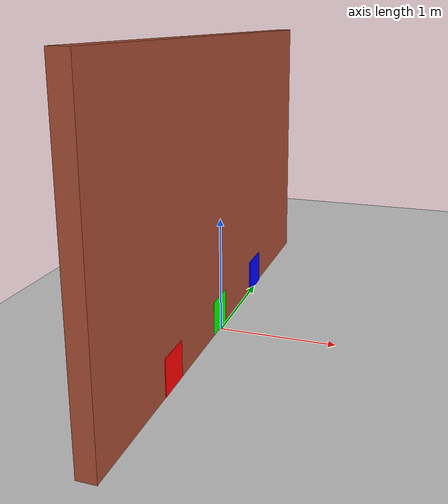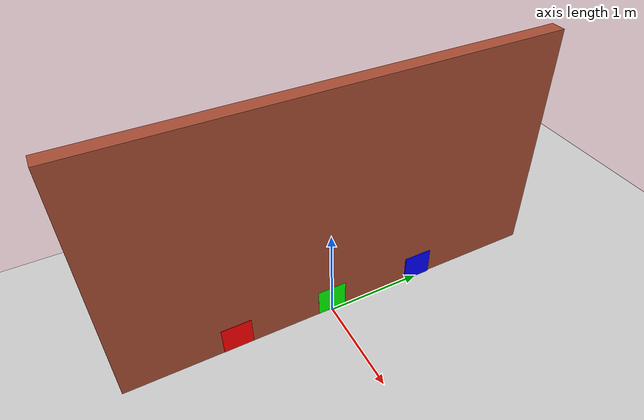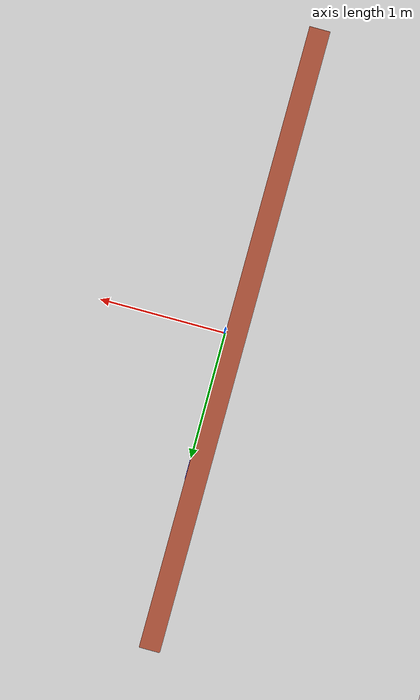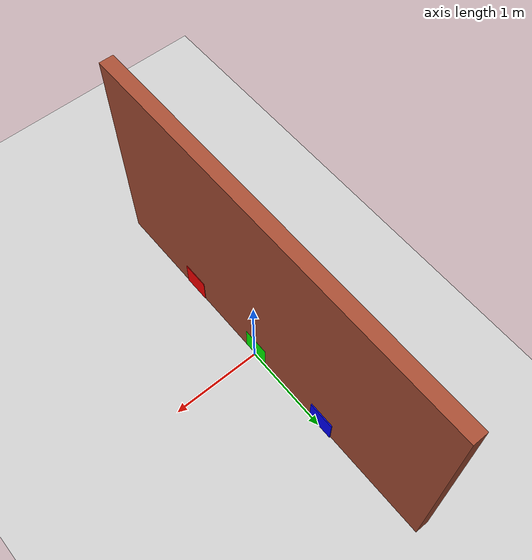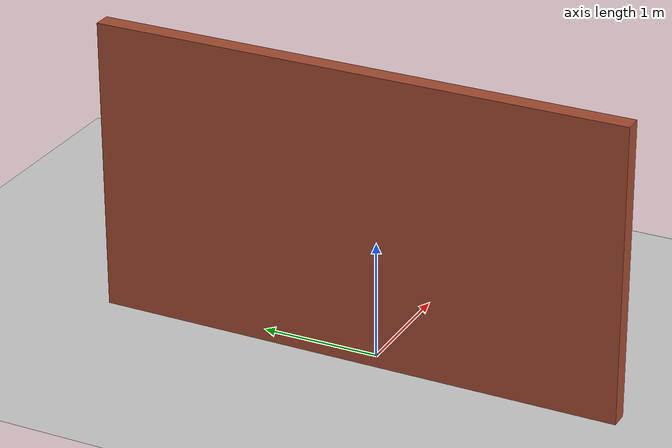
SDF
<sdf version="1.7">
 <world name="default">
  <scene><ambient>0.4 0.4 0.4 1</ambient><background>0.7 0.7 0.7 1</background><shadows>1</shadows></scene>
  <light name="sun" type="directional">
   <pose>0 0 10 0 -0 0</pose>
   <diffuse>0.8 0.8 0.8 1</diffuse>
   <specular>0.2 0.2 0.2 1</specular>
   <attenuation>
    <range>1000</range>
    <constant>0.9</constant>
    <linear>0.01</linear>
    <quadratic>0.001</quadratic>
   </attenuation>
   <direction>-0.5 0.1 -0.9</direction>
   <spot><inner_angle>0</inner_angle><outer_angle>0</outer_angle><falloff>0</falloff></spot>
  </light>
  <model name="ground_plane">
   <static>1</static>
   <link name="link">
    <collision name="collision">
     <geometry><plane><normal>0 0 1</normal><size>100 100</size></plane></geometry>
     <surface>
      <contact><collide_bitmask>65535</collide_bitmask></contact>
      <friction><ode><mu>100</mu><mu2>50</mu2></ode></friction>
     </surface>
    </collision>
    <visual name="visual">
     <cast_shadows>0</cast_shadows>
     <geometry><plane><normal>0 0 1</normal><size>100 100</size></plane></geometry>
     <material>
      <script><uri>file://media/materials/scripts/gazebo.material</uri><name>Gazebo/Grey</name></script>
     </material>
    </visual>
   </link>
  </model>
  <physics type="ode">
   <real_time_update_rate>1000</real_time_update_rate>
   <max_step_size>0.001</max_step_size>
   <real_time_factor>1</real_time_factor>
   <ode>
    <solver>
     <type>quick</type>
     <iters>150</iters>
     <precon_iters>0</precon_iters>
     <sor>1.4</sor>
     <use_dynamic_moi_rescaling>1</use_dynamic_moi_rescaling>
    </solver>
    <constraints>
     <cfm>1e-05</cfm>
     <erp>0.2</erp>
     <contact_max_correcting_vel>2000</contact_max_correcting_vel>
     <contact_surface_layer>0.01</contact_surface_layer>
    </constraints>
   </ode>
  </physics>
  <gravity>0 0 -9.8</gravity>
  <magnetic_field>6e-06 2.3e-05 -4.2e-05</magnetic_field>
  <atmosphere type="adiabatic"/>
  <spherical_coordinates>
   <surface_model>EARTH_WGS84</surface_model>
   <latitude_deg>0</latitude_deg>
   <longitude_deg>0</longitude_deg>
   <elevation>0</elevation>
   <heading_deg>0</heading_deg>
  </spherical_coordinates>
  <model name="brick_wall">
   <link name="Wall_0">
    <pose>0 -1.9925 0 0 -0 0</pose>
    <self_collide>1</self_collide>
    <inertial>
     <mass>1</mass>
     <inertia><ixx>1</ixx><ixy>0</ixy><ixz>0</ixz><iyy>1</iyy><iyz>0</iyz><izz>1</izz></inertia>
    </inertial>
    <visual name="Wall_0_Visual">
     <pose>0 0 1.25 0 -0 0</pose>
     <geometry><box><size>4.5 0.15 2.5</size></box></geometry>
     <material>
      <script><uri>file://media/materials/scripts/gazebo.material</uri><name>Gazebo/Bricks</name></script>
      <ambient>1 1 1 1</ambient>
      <shader type="pixel"><normal_map>__default__</normal_map></shader>
     </material>
     <meta><layer>0</layer></meta>
    </visual>
    <collision name="Wall_0_Collision">
     <pose>0 0 1.25 0 -0 0</pose>
     <geometry><box><size>4.5 0.15 2.5</size></box></geometry>
     <surface>
      <friction>
       <ode><mu>1</mu><mu2>1</mu2><fdir1>0 0 0</fdir1><slip1>0</slip1><slip2>0</slip2></ode>
       <torsional>
        <coefficient>1</coefficient>
        <patch_radius>0</patch_radius>
        <surface_radius>0</surface_radius>
        <use_patch_radius>1</use_patch_radius>
        <ode><slip>0</slip></ode>
       </torsional>
      </friction>
      <bounce><restitution_coefficient>0</restitution_coefficient><threshold>1e+06</threshold></bounce>
      <contact>
       <collide_without_contact>0</collide_without_contact>
       <collide_without_contact_bitmask>1</collide_without_contact_bitmask>
       <collide_bitmask>1</collide_bitmask>
       <ode>
        <soft_cfm>0</soft_cfm>
        <soft_erp>0.2</soft_erp>
        <kp>1e+13</kp>
        <kd>1</kd>
        <max_vel>0.01</max_vel>
        <min_depth>0</min_depth>
       </ode>
       <bullet>
        <split_impulse>1</split_impulse>
        <split_impulse_penetration_threshold>-0.01</split_impulse_penetration_threshold>
        <soft_cfm>0</soft_cfm>
        <soft_erp>0.2</soft_erp>
        <kp>1e+13</kp>
        <kd>1</kd>
       </bullet>
      </contact>
     </surface>
    </collision>
   </link>
   <static>1</static>
   <pose>-2.07967 0.137787 0 0 -0 1.56885</pose>
  </model>
  <model name="green_square">
   <link name="link_1">
    <inertial>
     <mass>1</mass>
     <inertia>
      <ixx>0.166667</ixx>
      <ixy>0</ixy>
      <ixz>0</ixz>
      <iyy>0.166667</iyy>
      <iyz>0</iyz>
      <izz>0.166667</izz>
     </inertia>
    </inertial>
    <self_collide>1</self_collide>
    <visual name="visual">
     <geometry><box><size>0.05 0.3 0.3</size></box></geometry>
     <material>
      <lighting>1</lighting>
      <script><uri>file://media/materials/scripts/gazebo.material</uri><name>Gazebo/Grey</name></script>
      <shader type="pixel"><normal_map>__default__</normal_map></shader>
      <ambient>0.3 1 0 1</ambient>
      <diffuse>0 1 0 1</diffuse>
      <specular>0 1 0 1</specular>
      <emissive>0 1 0 1</emissive>
     </material>
    </visual>
    <collision name="collision">
     <geometry><box><size>1 1 1</size></box></geometry>
     <surface>
      <friction>
       <ode><mu>1</mu><mu2>1</mu2><fdir1>0 0 0</fdir1><slip1>0</slip1><slip2>0</slip2></ode>
       <torsional>
        <coefficient>1</coefficient>
        <patch_radius>0</patch_radius>
        <surface_radius>0</surface_radius>
        <use_patch_radius>1</use_patch_radius>
        <ode><slip>0</slip></ode>
       </torsional>
      </friction>
      <bounce><restitution_coefficient>0</restitution_coefficient><threshold>1e+06</threshold></bounce>
      <contact>
       <collide_without_contact>0</collide_without_contact>
       <collide_without_contact_bitmask>1</collide_without_contact_bitmask>
       <collide_bitmask>1</collide_bitmask>
       <ode>
        <soft_cfm>0</soft_cfm>
        <soft_erp>0.2</soft_erp>
        <kp>1e+13</kp>
        <kd>1</kd>
        <max_vel>0.01</max_vel>
        <min_depth>0</min_depth>
       </ode>
       <bullet>
        <split_impulse>1</split_impulse>
        <split_impulse_penetration_threshold>-0.01</split_impulse_penetration_threshold>
        <soft_cfm>0</soft_cfm>
        <soft_erp>0.2</soft_erp>
        <kp>1e+13</kp>
        <kd>1</kd>
       </bullet>
      </contact>
     </surface>
    </collision>
   </link>
   <static>1</static>
   <allow_auto_disable>0</allow_auto_disable>
   <pose>-0.035825 0.004354 0.154428 0 -0 0</pose>
  </model>
  <model name="blue_square">
   <link name="link_1">
    <inertial>
     <mass>1</mass>
     <inertia>
      <ixx>0.166667</ixx>
      <ixy>0</ixy>
      <ixz>0</ixz>
      <iyy>0.166667</iyy>
      <iyz>0</iyz>
      <izz>0.166667</izz>
     </inertia>
    </inertial>
    <self_collide>1</self_collide>
    <visual name="visual">
     <geometry><box><size>0.05 0.3 0.3</size></box></geometry>
     <material>
      <lighting>1</lighting>
      <script><uri>file://media/materials/scripts/gazebo.material</uri><name>Gazebo/Grey</name></script>
      <shader type="pixel"><normal_map>__default__</normal_map></shader>
      <ambient>0 0 1 1</ambient>
      <diffuse>0 0 1 1</diffuse>
      <specular>0 0 1 1</specular>
      <emissive>0 0 1 1</emissive>
     </material>
    </visual>
    <collision name="collision">
     <geometry><box><size>1 1 1</size></box></geometry>
     <surface>
      <friction>
       <ode><mu>1</mu><mu2>1</mu2><fdir1>0 0 0</fdir1><slip1>0</slip1><slip2>0</slip2></ode>
       <torsional>
        <coefficient>1</coefficient>
        <patch_radius>0</patch_radius>
        <surface_radius>0</surface_radius>
        <use_patch_radius>1</use_patch_radius>
        <ode><slip>0</slip></ode>
       </torsional>
      </friction>
      <bounce><restitution_coefficient>0</restitution_coefficient><threshold>1e+06</threshold></bounce>
      <contact>
       <collide_without_contact>0</collide_without_contact>
       <collide_without_contact_bitmask>1</collide_without_contact_bitmask>
       <collide_bitmask>1</collide_bitmask>
       <ode>
        <soft_cfm>0</soft_cfm>
        <soft_erp>0.2</soft_erp>
        <kp>1e+13</kp>
        <kd>1</kd>
        <max_vel>0.01</max_vel>
        <min_depth>0</min_depth>
       </ode>
       <bullet>
        <split_impulse>1</split_impulse>
        <split_impulse_penetration_threshold>-0.01</split_impulse_penetration_threshold>
        <soft_cfm>0</soft_cfm>
        <soft_erp>0.2</soft_erp>
        <kp>1e+13</kp>
        <kd>1</kd>
       </bullet>
      </contact>
     </surface>
    </collision>
   </link>
   <static>1</static>
   <allow_auto_disable>0</allow_auto_disable>
   <pose>-0.023215 1.02025 0.149139 0 -0 0</pose>
  </model>
  <model name="red_square">
   <link name="link_1">
    <inertial>
     <mass>1</mass>
     <inertia>
      <ixx>0.166667</ixx>
      <ixy>0</ixy>
      <ixz>0</ixz>
      <iyy>0.166667</iyy>
      <iyz>0</iyz>
      <izz>0.166667</izz>
     </inertia>
    </inertial>
    <visual name="visual">
     <geometry><box><size>0.05 0.3 0.3</size></box></geometry>
     <material>
      <lighting>1</lighting>
      <script><uri>file://media/materials/scripts/gazebo.material</uri><name>Gazebo/Grey</name></script>
      <shader type="pixel"><normal_map>__default__</normal_map></shader>
      <ambient>1 0 0 0</ambient>
      <diffuse>1 0 0 1</diffuse>
      <specular>1 0.01 0.01 1</specular>
      <emissive>1 0 0 1</emissive>
     </material>
    </visual>
    <collision name="collision">
     <geometry><box><size>1 1 1</size></box></geometry>
     <surface>
      <friction>
       <ode><mu>1</mu><mu2>1</mu2><fdir1>0 0 0</fdir1><slip1>0</slip1><slip2>0</slip2></ode>
       <torsional>
        <coefficient>1</coefficient>
        <patch_radius>0</patch_radius>
        <surface_radius>0</surface_radius>
        <use_patch_radius>1</use_patch_radius>
        <ode><slip>0</slip></ode>
       </torsional>
      </friction>
      <bounce><restitution_coefficient>0</restitution_coefficient><threshold>1e+06</threshold></bounce>
      <contact>
       <collide_without_contact>0</collide_without_contact>
       <collide_without_contact_bitmask>1</collide_without_contact_bitmask>
       <collide_bitmask>1</collide_bitmask>
       <ode>
        <soft_cfm>0</soft_cfm>
        <soft_erp>0.2</soft_erp>
        <kp>1e+13</kp>
        <kd>1</kd>
        <max_vel>0.01</max_vel>
        <min_depth>0</min_depth>
       </ode>
       <bullet>
        <split_impulse>1</split_impulse>
        <split_impulse_penetration_threshold>-0.01</split_impulse_penetration_threshold>
        <soft_cfm>0</soft_cfm>
        <soft_erp>0.2</soft_erp>
        <kp>1e+13</kp>
        <kd>1</kd>
       </bullet>
      </contact>
     </surface>
    </collision>
   </link>
   <static>1</static>
   <pose>-0.03335 -1.00301 0.156436 0 -0 0.000458</pose>
  </model>
 </world>
</sdf>
